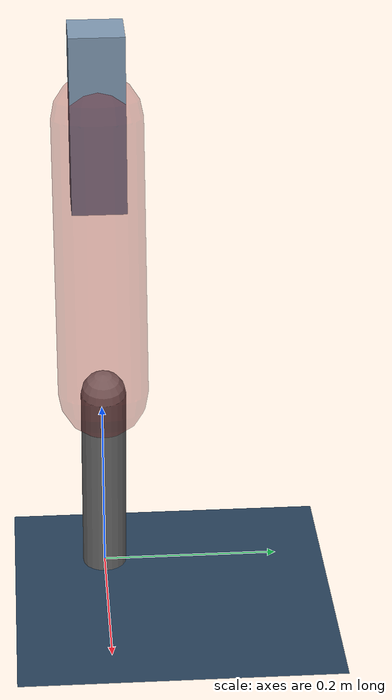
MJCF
<mujoco model="Hopper2D">
	<compiler inertiafromgeom="true" angle="radian" />
	<option timestep="0.001" integrator="implicit" cone="elliptic" solver="Newton" tolerance="1e-10" />

	<default>
		<geom contype="1" conaffinity="1" condim="3" friction="2 0.005 0.0001" solref="0.005 1" />
		<joint limited="true" damping="0.1" />
	</default>

	<asset>
		<texture name="skybox" type="skybox" builtin="gradient" rgb1=".4 .6 .8" rgb2="0 0 0" width="800" height="800" />
		<texture name="grid" type="2d" builtin="checker" rgb1=".1 .2 .3" rgb2=".2 .3 .4" width="300" height="300" mark="edge" markrgb=".2 .3 .4" />
		<material name="ground" texture="grid" texrepeat="1 1" texuniform="true" reflectance="0.1" />
		<material name="leg" rgba="0.5 0.6 0.7 1" />
	</asset>

	<worldbody>

		<geom name="floor" type="plane" size="5 5 0.25" material="ground" />

		<light directional="false" diffuse="0.8 0.8 0.8" specular="0.3 0.3 0.3" pos="0 0 2" dir="0 0 -1" />
		<light mode="targetbodycom" target="base" directional="false" diffuse="0.8 0.8 0.8" specular="0.3 0.3 0.3" pos="0 0 2" dir="0 0 -1" />

		<camera name="fixed" pos="0 -2 1" xyaxes="1 0 0 0 0 1" />
		<camera name="tracking" mode="trackcom" pos="0 -3 1" />

		<body name="root" pos="0 0 0.5504791262623538">
			<joint name="slide_x" type="slide" axis="1 0 0" range="-100 100" />
			<joint name="slide_z" type="slide" axis="0 0 1" range="0 10" />

			<body name="base" pos="0 0 0">
				<geom name="torso" type="box" size="0.03 0.03 0.1" mass="2.12" material="leg" />

				<body name="link1" pos="0 0 0" euler="0 1.4000165013284358 0">
					<joint type="hinge" axis="0 -1 0" pos="0 0 0" name="hinge1" limited="true" range="-3.14 3.14" stiffness="0" damping="0.1" />
					<geom name="thigh" type="capsule" fromto="0 0 0 0.30846111705145285 0 0" size="0.05" rgba="0.5 0 0 0.3" mass="1.011691127744068" />

					<body name="link2" pos="0.30846111705145285 0 0" euler="0 0.38032378820853796 0">
						<joint type="hinge" axis="0 -1 0" pos="0 0 0" name="hinge2" limited="true" range="-3.14 3.14" stiffness="0" damping="0.1" />
						<geom name="shank" type="capsule" fromto="0 0 0 0.25201800921090106 0 0" size="0.025" mass="0.4442144073687208" />

					</body>
				</body>
			</body>
		</body>
	</worldbody>

	<actuator>
		<motor name="torque1" joint="hinge1" ctrlrange="-71.57751751211397 71.57751751211397" ctrllimited="true" gear="1" />
		<motor name="torque2" joint="hinge2" ctrlrange="-31.15975856708507 31.15975856708507" ctrllimited="true" gear="1" />
	</actuator>
</mujoco>
